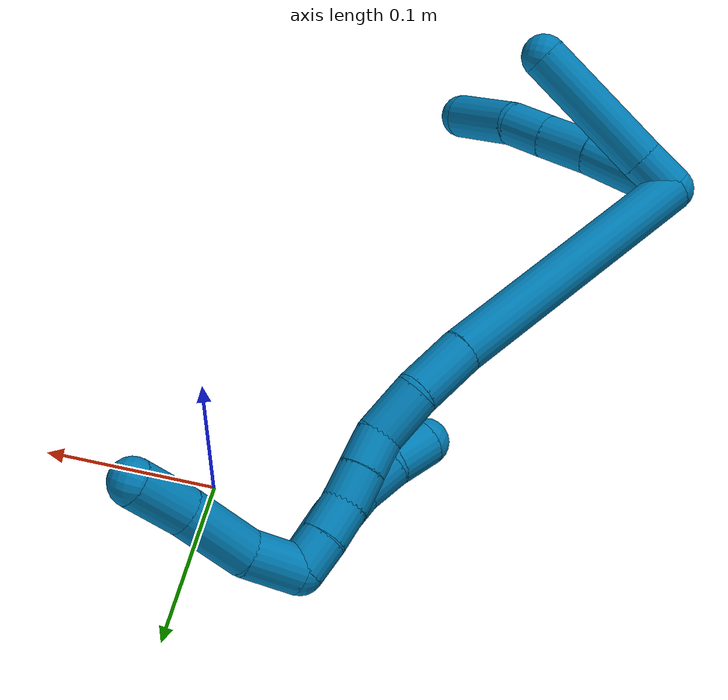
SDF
<sdf version="1.7">
 <world name="default">
  <model name="9">
   <static>0</static>
   <link name="9">
    <collision name="collision-cylinder-e_1_2_8">
     <pose>-0.007198 -0.00766 -0.024235 2.83547 -0.275976 -1.46584</pose>
     <geometry><cylinder><radius>0.0125</radius><length>0.052832</length></cylinder></geometry>
     <surface>
      <friction><ode><mu>1.16</mu><mu2>1.16</mu2><slip1>0</slip1><slip2>0</slip2></ode></friction>
      <contact><ode><kp>1e+06</kp><kd>1</kd><max_vel>0</max_vel><min_depth>0.001</min_depth></ode></contact>
     </surface>
    </collision>
    <visual name="visual-cylinder-e_1_2_8">
     <pose>-0.007198 -0.00766 -0.024235 2.83547 -0.275976 -1.46584</pose>
     <geometry><cylinder><radius>0.0125</radius><length>0.052832</length></cylinder></geometry>
     <material><ambient>0 0.490196 0.709804 1</ambient></material>
    </visual>
    <collision name="collision-cylinder-e_2_8_9">
     <pose>-0.019321 -0.019019 -0.062313 2.88041 -0.331044 -1.80902</pose>
     <geometry><cylinder><radius>0.0125</radius><length>0.030306</length></cylinder></geometry>
     <surface>
      <friction><ode><mu>1.16</mu><mu2>1.16</mu2><slip1>0</slip1><slip2>0</slip2></ode></friction>
      <contact><ode><kp>1e+06</kp><kd>1</kd><max_vel>0</max_vel><min_depth>0.001</min_depth></ode></contact>
     </surface>
    </collision>
    <visual name="visual-cylinder-e_2_8_9">
     <pose>-0.019321 -0.019019 -0.062313 2.88041 -0.331044 -1.80902</pose>
     <geometry><cylinder><radius>0.0125</radius><length>0.030306</length></cylinder></geometry>
     <material><ambient>0 0.490196 0.709804 1</ambient></material>
    </visual>
    <collision name="collision-cylinder-e_3_9_10">
     <pose>-0.028187 -0.025895 -0.087474 2.86806 -0.323504 -1.74028</pose>
     <geometry><cylinder><radius>0.0125</radius><length>0.024793</length></cylinder></geometry>
     <surface>
      <friction><ode><mu>1.16</mu><mu2>1.16</mu2><slip1>0</slip1><slip2>0</slip2></ode></friction>
      <contact><ode><kp>1e+06</kp><kd>1</kd><max_vel>0</max_vel><min_depth>0.001</min_depth></ode></contact>
     </surface>
    </collision>
    <visual name="visual-cylinder-e_3_9_10">
     <pose>-0.028187 -0.025895 -0.087474 2.86806 -0.323504 -1.74028</pose>
     <geometry><cylinder><radius>0.0125</radius><length>0.024793</length></cylinder></geometry>
     <material><ambient>0 0.490196 0.709804 1</ambient></material>
    </visual>
    <collision name="collision-cylinder-e_4_10_6">
     <pose>-0.044173 -0.032962 -0.11559 2.91393 -0.609732 -2.44464</pose>
     <geometry><cylinder><radius>0.0125</radius><length>0.04207</length></cylinder></geometry>
     <surface>
      <friction><ode><mu>1.16</mu><mu2>1.16</mu2><slip1>0</slip1><slip2>0</slip2></ode></friction>
      <contact><ode><kp>1e+06</kp><kd>1</kd><max_vel>0</max_vel><min_depth>0.001</min_depth></ode></contact>
     </surface>
    </collision>
    <visual name="visual-cylinder-e_4_10_6">
     <pose>-0.044173 -0.032962 -0.11559 2.91393 -0.609732 -2.44464</pose>
     <geometry><cylinder><radius>0.0125</radius><length>0.04207</length></cylinder></geometry>
     <material><ambient>0 0.490196 0.709804 1</ambient></material>
    </visual>
    <collision name="collision-cylinder-e_1_2_11">
     <pose>0.003441 -0.004774 -0.009806 2.68851 0.305611 1.17804</pose>
     <geometry><cylinder><radius>0.0125</radius><length>0.022872</length></cylinder></geometry>
     <surface>
      <friction><ode><mu>1.16</mu><mu2>1.16</mu2><slip1>0</slip1><slip2>0</slip2></ode></friction>
      <contact><ode><kp>1e+06</kp><kd>1</kd><max_vel>0</max_vel><min_depth>0.001</min_depth></ode></contact>
     </surface>
    </collision>
    <visual name="visual-cylinder-e_1_2_11">
     <pose>0.003441 -0.004774 -0.009806 2.68851 0.305611 1.17804</pose>
     <geometry><cylinder><radius>0.0125</radius><length>0.022872</length></cylinder></geometry>
     <material><ambient>0 0.490196 0.709804 1</ambient></material>
    </visual>
    <collision name="collision-cylinder-e_2_11_5">
     <pose>0.019858 -0.025595 -0.052189 2.68389 0.343188 1.27927</pose>
     <geometry><cylinder><radius>0.0125</radius><length>0.077128</length></cylinder></geometry>
     <surface>
      <friction><ode><mu>1.16</mu><mu2>1.16</mu2><slip1>0</slip1><slip2>0</slip2></ode></friction>
      <contact><ode><kp>1e+06</kp><kd>1</kd><max_vel>0</max_vel><min_depth>0.001</min_depth></ode></contact>
     </surface>
    </collision>
    <visual name="visual-cylinder-e_2_11_5">
     <pose>0.019858 -0.025595 -0.052189 2.68389 0.343188 1.27927</pose>
     <geometry><cylinder><radius>0.0125</radius><length>0.077128</length></cylinder></geometry>
     <material><ambient>0 0.490196 0.709804 1</ambient></material>
    </visual>
    <collision name="collision-cylinder-e_1_2_12">
     <pose>0.01617 0.066454 -0.038309 -2.09373 0.207766 -0.357043</pose>
     <geometry><cylinder><radius>0.0125</radius><length>0.156783</length></cylinder></geometry>
     <surface>
      <friction><ode><mu>1.16</mu><mu2>1.16</mu2><slip1>0</slip1><slip2>0</slip2></ode></friction>
      <contact><ode><kp>1e+06</kp><kd>1</kd><max_vel>0</max_vel><min_depth>0.001</min_depth></ode></contact>
     </surface>
    </collision>
    <visual name="visual-cylinder-e_1_2_12">
     <pose>0.01617 0.066454 -0.038309 -2.09373 0.207766 -0.357043</pose>
     <geometry><cylinder><radius>0.0125</radius><length>0.156783</length></cylinder></geometry>
     <material><ambient>0 0.490196 0.709804 1</ambient></material>
    </visual>
    <collision name="collision-cylinder-e_2_12_13">
     <pose>0.035435 0.147921 -0.083661 -2.0095 0.184491 -0.289147</pose>
     <geometry><cylinder><radius>0.0125</radius><length>0.033739</length></cylinder></geometry>
     <surface>
      <friction><ode><mu>1.16</mu><mu2>1.16</mu2><slip1>0</slip1><slip2>0</slip2></ode></friction>
      <contact><ode><kp>1e+06</kp><kd>1</kd><max_vel>0</max_vel><min_depth>0.001</min_depth></ode></contact>
     </surface>
    </collision>
    <visual name="visual-cylinder-e_2_12_13">
     <pose>0.035435 0.147921 -0.083661 -2.0095 0.184491 -0.289147</pose>
     <geometry><cylinder><radius>0.0125</radius><length>0.033739</length></cylinder></geometry>
     <material><ambient>0 0.490196 0.709804 1</ambient></material>
    </visual>
    <collision name="collision-cylinder-e_3_13_14">
     <pose>0.037577 0.17637 -0.096471 -1.97613 -0.065024 0.098613</pose>
     <geometry><cylinder><radius>0.0125</radius><length>0.029304</length></cylinder></geometry>
     <surface>
      <friction><ode><mu>1.16</mu><mu2>1.16</mu2><slip1>0</slip1><slip2>0</slip2></ode></friction>
      <contact><ode><kp>1e+06</kp><kd>1</kd><max_vel>0</max_vel><min_depth>0.001</min_depth></ode></contact>
     </surface>
    </collision>
    <visual name="visual-cylinder-e_3_13_14">
     <pose>0.037577 0.17637 -0.096471 -1.97613 -0.065024 0.098613</pose>
     <geometry><cylinder><radius>0.0125</radius><length>0.029304</length></cylinder></geometry>
     <material><ambient>0 0.490196 0.709804 1</ambient></material>
    </visual>
    <collision name="collision-cylinder-e_4_14_15">
     <pose>0.037065 0.199741 -0.10347 -1.69432 0.043864 -0.049644</pose>
     <geometry><cylinder><radius>0.0125</radius><length>0.02004</length></cylinder></geometry>
     <surface>
      <friction><ode><mu>1.16</mu><mu2>1.16</mu2><slip1>0</slip1><slip2>0</slip2></ode></friction>
      <contact><ode><kp>1e+06</kp><kd>1</kd><max_vel>0</max_vel><min_depth>0.001</min_depth></ode></contact>
     </surface>
    </collision>
    <visual name="visual-cylinder-e_4_14_15">
     <pose>0.037065 0.199741 -0.10347 -1.69432 0.043864 -0.049644</pose>
     <geometry><cylinder><radius>0.0125</radius><length>0.02004</length></cylinder></geometry>
     <material><ambient>0 0.490196 0.709804 1</ambient></material>
    </visual>
    <collision name="collision-cylinder-e_5_15_16">
     <pose>0.037551 0.219594 -0.106001 -1.70095 0.004692 -0.005346</pose>
     <geometry><cylinder><radius>0.0125</radius><length>0.020008</length></cylinder></geometry>
     <surface>
      <friction><ode><mu>1.16</mu><mu2>1.16</mu2><slip1>0</slip1><slip2>0</slip2></ode></friction>
      <contact><ode><kp>1e+06</kp><kd>1</kd><max_vel>0</max_vel><min_depth>0.001</min_depth></ode></contact>
     </surface>
    </collision>
    <visual name="visual-cylinder-e_5_15_16">
     <pose>0.037551 0.219594 -0.106001 -1.70095 0.004692 -0.005346</pose>
     <geometry><cylinder><radius>0.0125</radius><length>0.020008</length></cylinder></geometry>
     <material><ambient>0 0.490196 0.709804 1</ambient></material>
    </visual>
    <collision name="collision-cylinder-e_6_16_17">
     <pose>0.038908 0.239269 -0.109354 -1.77834 0.130689 -0.160956</pose>
     <geometry><cylinder><radius>0.0125</radius><length>0.020109</length></cylinder></geometry>
     <surface>
      <friction><ode><mu>1.16</mu><mu2>1.16</mu2><slip1>0</slip1><slip2>0</slip2></ode></friction>
      <contact><ode><kp>1e+06</kp><kd>1</kd><max_vel>0</max_vel><min_depth>0.001</min_depth></ode></contact>
     </surface>
    </collision>
    <visual name="visual-cylinder-e_6_16_17">
     <pose>0.038908 0.239269 -0.109354 -1.77834 0.130689 -0.160956</pose>
     <geometry><cylinder><radius>0.0125</radius><length>0.020109</length></cylinder></geometry>
     <material><ambient>0 0.490196 0.709804 1</ambient></material>
    </visual>
    <collision name="collision-cylinder-e_7_17_1">
     <pose>0.041111 0.258597 -0.114189 -1.85352 0.08924 -0.118793</pose>
     <geometry><cylinder><radius>0.0125</radius><length>0.020017</length></cylinder></geometry>
     <surface>
      <friction><ode><mu>1.16</mu><mu2>1.16</mu2><slip1>0</slip1><slip2>0</slip2></ode></friction>
      <contact><ode><kp>1e+06</kp><kd>1</kd><max_vel>0</max_vel><min_depth>0.001</min_depth></ode></contact>
     </surface>
    </collision>
    <visual name="visual-cylinder-e_7_17_1">
     <pose>0.041111 0.258597 -0.114189 -1.85352 0.08924 -0.118793</pose>
     <geometry><cylinder><radius>0.0125</radius><length>0.020017</length></cylinder></geometry>
     <material><ambient>0 0.490196 0.709804 1</ambient></material>
    </visual>
    <collision name="collision-cylinder-e_1_1_18">
     <pose>0.049888 0.269314 -0.129499 -3.05052 0.559853 -2.82718</pose>
     <geometry><cylinder><radius>0.0125</radius><length>0.029695</length></cylinder></geometry>
     <surface>
      <friction><ode><mu>1.16</mu><mu2>1.16</mu2><slip1>0</slip1><slip2>0</slip2></ode></friction>
      <contact><ode><kp>1e+06</kp><kd>1</kd><max_vel>0</max_vel><min_depth>0.001</min_depth></ode></contact>
     </surface>
    </collision>
    <visual name="visual-cylinder-e_1_1_18">
     <pose>0.049888 0.269314 -0.129499 -3.05052 0.559853 -2.82718</pose>
     <geometry><cylinder><radius>0.0125</radius><length>0.029695</length></cylinder></geometry>
     <material><ambient>0 0.490196 0.709804 1</ambient></material>
    </visual>
    <collision name="collision-cylinder-e_2_18_19">
     <pose>0.069902 0.267423 -0.157009 2.94173 0.670771 2.5814</pose>
     <geometry><cylinder><radius>0.0125</radius><length>0.039026</length></cylinder></geometry>
     <surface>
      <friction><ode><mu>1.16</mu><mu2>1.16</mu2><slip1>0</slip1><slip2>0</slip2></ode></friction>
      <contact><ode><kp>1e+06</kp><kd>1</kd><max_vel>0</max_vel><min_depth>0.001</min_depth></ode></contact>
     </surface>
    </collision>
    <visual name="visual-cylinder-e_2_18_19">
     <pose>0.069902 0.267423 -0.157009 2.94173 0.670771 2.5814</pose>
     <geometry><cylinder><radius>0.0125</radius><length>0.039026</length></cylinder></geometry>
     <material><ambient>0 0.490196 0.709804 1</ambient></material>
    </visual>
    <collision name="collision-cylinder-e_3_19_4">
     <pose>0.0928 0.263442 -0.183291 3.05804 0.759525 2.9329</pose>
     <geometry><cylinder><radius>0.0125</radius><length>0.031278</length></cylinder></geometry>
     <surface>
      <friction><ode><mu>1.16</mu><mu2>1.16</mu2><slip1>0</slip1><slip2>0</slip2></ode></friction>
      <contact><ode><kp>1e+06</kp><kd>1</kd><max_vel>0</max_vel><min_depth>0.001</min_depth></ode></contact>
     </surface>
    </collision>
    <visual name="visual-cylinder-e_3_19_4">
     <pose>0.0928 0.263442 -0.183291 3.05804 0.759525 2.9329</pose>
     <geometry><cylinder><radius>0.0125</radius><length>0.031278</length></cylinder></geometry>
     <material><ambient>0 0.490196 0.709804 1</ambient></material>
    </visual>
    <collision name="collision-cylinder-e_1_1_20">
     <pose>0.038826 0.253182 -0.113708 1.35652 -0.204177 -0.164724</pose>
     <geometry><cylinder><radius>0.0125</radius><length>0.031328</length></cylinder></geometry>
     <surface>
      <friction><ode><mu>1.16</mu><mu2>1.16</mu2><slip1>0</slip1><slip2>0</slip2></ode></friction>
      <contact><ode><kp>1e+06</kp><kd>1</kd><max_vel>0</max_vel><min_depth>0.001</min_depth></ode></contact>
     </surface>
    </collision>
    <visual name="visual-cylinder-e_1_1_20">
     <pose>0.038826 0.253182 -0.113708 1.35652 -0.204177 -0.164724</pose>
     <geometry><cylinder><radius>0.0125</radius><length>0.031328</length></cylinder></geometry>
     <material><ambient>0 0.490196 0.709804 1</ambient></material>
    </visual>
    <collision name="collision-cylinder-e_2_20_21">
     <pose>0.032191 0.228408 -0.107625 1.29002 -0.327437 -0.247308</pose>
     <geometry><cylinder><radius>0.0125</radius><length>0.021514</length></cylinder></geometry>
     <surface>
      <friction><ode><mu>1.16</mu><mu2>1.16</mu2><slip1>0</slip1><slip2>0</slip2></ode></friction>
      <contact><ode><kp>1e+06</kp><kd>1</kd><max_vel>0</max_vel><min_depth>0.001</min_depth></ode></contact>
     </surface>
    </collision>
    <visual name="visual-cylinder-e_2_20_21">
     <pose>0.032191 0.228408 -0.107625 1.29002 -0.327437 -0.247308</pose>
     <geometry><cylinder><radius>0.0125</radius><length>0.021514</length></cylinder></geometry>
     <material><ambient>0 0.490196 0.709804 1</ambient></material>
    </visual>
    <collision name="collision-cylinder-e_3_21_22">
     <pose>0.026774 0.208628 -0.099149 1.05594 -0.16881 -0.098604</pose>
     <geometry><cylinder><radius>0.0125</radius><length>0.023294</length></cylinder></geometry>
     <surface>
      <friction><ode><mu>1.16</mu><mu2>1.16</mu2><slip1>0</slip1><slip2>0</slip2></ode></friction>
      <contact><ode><kp>1e+06</kp><kd>1</kd><max_vel>0</max_vel><min_depth>0.001</min_depth></ode></contact>
     </surface>
    </collision>
    <visual name="visual-cylinder-e_3_21_22">
     <pose>0.026774 0.208628 -0.099149 1.05594 -0.16881 -0.098604</pose>
     <geometry><cylinder><radius>0.0125</radius><length>0.023294</length></cylinder></geometry>
     <material><ambient>0 0.490196 0.709804 1</ambient></material>
    </visual>
    <collision name="collision-cylinder-e_4_22_3">
     <pose>0.019864 0.189455 -0.087702 1.00787 -0.428148 -0.238627</pose>
     <geometry><cylinder><radius>0.0125</radius><length>0.023865</length></cylinder></geometry>
     <surface>
      <friction><ode><mu>1.16</mu><mu2>1.16</mu2><slip1>0</slip1><slip2>0</slip2></ode></friction>
      <contact><ode><kp>1e+06</kp><kd>1</kd><max_vel>0</max_vel><min_depth>0.001</min_depth></ode></contact>
     </surface>
    </collision>
    <visual name="visual-cylinder-e_4_22_3">
     <pose>0.019864 0.189455 -0.087702 1.00787 -0.428148 -0.238627</pose>
     <geometry><cylinder><radius>0.0125</radius><length>0.023865</length></cylinder></geometry>
     <material><ambient>0 0.490196 0.709804 1</ambient></material>
    </visual>
    <collision name="collision-sphere-3">
     <pose>0.014909 0.180274 -0.081909 0 -0 0</pose>
     <geometry><sphere><radius>0.0125</radius></sphere></geometry>
     <surface>
      <friction><ode><mu>1.16</mu><mu2>1.16</mu2><slip1>0</slip1><slip2>0</slip2></ode></friction>
      <contact><ode><kp>1e+06</kp><kd>1</kd><max_vel>0</max_vel><min_depth>0.001</min_depth></ode></contact>
     </surface>
    </collision>
    <visual name="visual-sphere-3">
     <pose>0.014909 0.180274 -0.081909 0 -0 0</pose>
     <geometry><sphere><radius>0.0125</radius></sphere></geometry>
     <material><ambient>0 0.490196 0.709804 1</ambient></material>
    </visual>
    <collision name="collision-sphere-22">
     <pose>0.024818 0.198635 -0.093495 0 -0 0</pose>
     <geometry><sphere><radius>0.0125</radius></sphere></geometry>
     <surface>
      <friction><ode><mu>1.16</mu><mu2>1.16</mu2><slip1>0</slip1><slip2>0</slip2></ode></friction>
      <contact><ode><kp>1e+06</kp><kd>1</kd><max_vel>0</max_vel><min_depth>0.001</min_depth></ode></contact>
     </surface>
    </collision>
    <visual name="visual-sphere-22">
     <pose>0.024818 0.198635 -0.093495 0 -0 0</pose>
     <geometry><sphere><radius>0.0125</radius></sphere></geometry>
     <material><ambient>0 0.490196 0.709804 1</ambient></material>
    </visual>
    <collision name="collision-sphere-21">
     <pose>0.028731 0.218621 -0.104802 0 -0 0</pose>
     <geometry><sphere><radius>0.0125</radius></sphere></geometry>
     <surface>
      <friction><ode><mu>1.16</mu><mu2>1.16</mu2><slip1>0</slip1><slip2>0</slip2></ode></friction>
      <contact><ode><kp>1e+06</kp><kd>1</kd><max_vel>0</max_vel><min_depth>0.001</min_depth></ode></contact>
     </surface>
    </collision>
    <visual name="visual-sphere-21">
     <pose>0.028731 0.218621 -0.104802 0 -0 0</pose>
     <geometry><sphere><radius>0.0125</radius></sphere></geometry>
     <material><ambient>0 0.490196 0.709804 1</ambient></material>
    </visual>
    <collision name="collision-sphere-20">
     <pose>0.03565 0.238194 -0.110447 0 -0 0</pose>
     <geometry><sphere><radius>0.0125</radius></sphere></geometry>
     <surface>
      <friction><ode><mu>1.16</mu><mu2>1.16</mu2><slip1>0</slip1><slip2>0</slip2></ode></friction>
      <contact><ode><kp>1e+06</kp><kd>1</kd><max_vel>0</max_vel><min_depth>0.001</min_depth></ode></contact>
     </surface>
    </collision>
    <visual name="visual-sphere-20">
     <pose>0.03565 0.238194 -0.110447 0 -0 0</pose>
     <geometry><sphere><radius>0.0125</radius></sphere></geometry>
     <material><ambient>0 0.490196 0.709804 1</ambient></material>
    </visual>
    <collision name="collision-sphere-4">
     <pose>0.103568 0.262496 -0.194593 0 -0 0</pose>
     <geometry><sphere><radius>0.0125</radius></sphere></geometry>
     <surface>
      <friction><ode><mu>1.16</mu><mu2>1.16</mu2><slip1>0</slip1><slip2>0</slip2></ode></friction>
      <contact><ode><kp>1e+06</kp><kd>1</kd><max_vel>0</max_vel><min_depth>0.001</min_depth></ode></contact>
     </surface>
    </collision>
    <visual name="visual-sphere-4">
     <pose>0.103568 0.262496 -0.194593 0 -0 0</pose>
     <geometry><sphere><radius>0.0125</radius></sphere></geometry>
     <material><ambient>0 0.490196 0.709804 1</ambient></material>
    </visual>
    <collision name="collision-sphere-11">
     <pose>0.006882 -0.009548 -0.019611 0 -0 0</pose>
     <geometry><sphere><radius>0.0125</radius></sphere></geometry>
     <surface>
      <friction><ode><mu>1.16</mu><mu2>1.16</mu2><slip1>0</slip1><slip2>0</slip2></ode></friction>
      <contact><ode><kp>1e+06</kp><kd>1</kd><max_vel>0</max_vel><min_depth>0.001</min_depth></ode></contact>
     </surface>
    </collision>
    <visual name="visual-sphere-11">
     <pose>0.006882 -0.009548 -0.019611 0 -0 0</pose>
     <geometry><sphere><radius>0.0125</radius></sphere></geometry>
     <material><ambient>0 0.490196 0.709804 1</ambient></material>
    </visual>
    <collision name="collision-sphere-6">
     <pose>-0.056219 -0.036854 -0.132389 0 -0 0</pose>
     <geometry><sphere><radius>0.0125</radius></sphere></geometry>
     <surface>
      <friction><ode><mu>1.16</mu><mu2>1.16</mu2><slip1>0</slip1><slip2>0</slip2></ode></friction>
      <contact><ode><kp>1e+06</kp><kd>1</kd><max_vel>0</max_vel><min_depth>0.001</min_depth></ode></contact>
     </surface>
    </collision>
    <visual name="visual-sphere-6">
     <pose>-0.056219 -0.036854 -0.132389 0 -0 0</pose>
     <geometry><sphere><radius>0.0125</radius></sphere></geometry>
     <material><ambient>0 0.490196 0.709804 1</ambient></material>
    </visual>
    <collision name="collision-sphere-10">
     <pose>-0.032128 -0.02907 -0.09879 0 -0 0</pose>
     <geometry><sphere><radius>0.0125</radius></sphere></geometry>
     <surface>
      <friction><ode><mu>1.16</mu><mu2>1.16</mu2><slip1>0</slip1><slip2>0</slip2></ode></friction>
      <contact><ode><kp>1e+06</kp><kd>1</kd><max_vel>0</max_vel><min_depth>0.001</min_depth></ode></contact>
     </surface>
    </collision>
    <visual name="visual-sphere-10">
     <pose>-0.032128 -0.02907 -0.09879 0 -0 0</pose>
     <geometry><sphere><radius>0.0125</radius></sphere></geometry>
     <material><ambient>0 0.490196 0.709804 1</ambient></material>
    </visual>
    <collision name="collision-sphere-9">
     <pose>-0.024246 -0.02272 -0.076158 0 -0 0</pose>
     <geometry><sphere><radius>0.0125</radius></sphere></geometry>
     <surface>
      <friction><ode><mu>1.16</mu><mu2>1.16</mu2><slip1>0</slip1><slip2>0</slip2></ode></friction>
      <contact><ode><kp>1e+06</kp><kd>1</kd><max_vel>0</max_vel><min_depth>0.001</min_depth></ode></contact>
     </surface>
    </collision>
    <visual name="visual-sphere-9">
     <pose>-0.024246 -0.02272 -0.076158 0 -0 0</pose>
     <geometry><sphere><radius>0.0125</radius></sphere></geometry>
     <material><ambient>0 0.490196 0.709804 1</ambient></material>
    </visual>
    <collision name="collision-sphere-2">
     <geometry><sphere><radius>0.0125</radius></sphere></geometry>
     <surface>
      <friction><ode><mu>1.16</mu><mu2>1.16</mu2><slip1>0</slip1><slip2>0</slip2></ode></friction>
      <contact><ode><kp>1e+06</kp><kd>1</kd><max_vel>0</max_vel><min_depth>0.001</min_depth></ode></contact>
     </surface>
    </collision>
    <visual name="visual-sphere-2">
     <geometry><sphere><radius>0.0125</radius></sphere></geometry>
     <material><ambient>0 0.490196 0.709804 1</ambient></material>
    </visual>
    <collision name="collision-sphere-19">
     <pose>0.082031 0.264389 -0.17199 0 -0 0</pose>
     <geometry><sphere><radius>0.0125</radius></sphere></geometry>
     <surface>
      <friction><ode><mu>1.16</mu><mu2>1.16</mu2><slip1>0</slip1><slip2>0</slip2></ode></friction>
      <contact><ode><kp>1e+06</kp><kd>1</kd><max_vel>0</max_vel><min_depth>0.001</min_depth></ode></contact>
     </surface>
    </collision>
    <visual name="visual-sphere-19">
     <pose>0.082031 0.264389 -0.17199 0 -0 0</pose>
     <geometry><sphere><radius>0.0125</radius></sphere></geometry>
     <material><ambient>0 0.490196 0.709804 1</ambient></material>
    </visual>
    <collision name="collision-sphere-8">
     <pose>-0.014396 -0.015319 -0.048469 0 -0 0</pose>
     <geometry><sphere><radius>0.0125</radius></sphere></geometry>
     <surface>
      <friction><ode><mu>1.16</mu><mu2>1.16</mu2><slip1>0</slip1><slip2>0</slip2></ode></friction>
      <contact><ode><kp>1e+06</kp><kd>1</kd><max_vel>0</max_vel><min_depth>0.001</min_depth></ode></contact>
     </surface>
    </collision>
    <visual name="visual-sphere-8">
     <pose>-0.014396 -0.015319 -0.048469 0 -0 0</pose>
     <geometry><sphere><radius>0.0125</radius></sphere></geometry>
     <material><ambient>0 0.490196 0.709804 1</ambient></material>
    </visual>
    <collision name="collision-sphere-5">
     <pose>0.032834 -0.041643 -0.084766 0 -0 0</pose>
     <geometry><sphere><radius>0.0125</radius></sphere></geometry>
     <surface>
      <friction><ode><mu>1.16</mu><mu2>1.16</mu2><slip1>0</slip1><slip2>0</slip2></ode></friction>
      <contact><ode><kp>1e+06</kp><kd>1</kd><max_vel>0</max_vel><min_depth>0.001</min_depth></ode></contact>
     </surface>
    </collision>
    <visual name="visual-sphere-5">
     <pose>0.032834 -0.041643 -0.084766 0 -0 0</pose>
     <geometry><sphere><radius>0.0125</radius></sphere></geometry>
     <material><ambient>0 0.490196 0.709804 1</ambient></material>
    </visual>
    <collision name="collision-sphere-12">
     <pose>0.03234 0.132909 -0.076617 0 -0 0</pose>
     <geometry><sphere><radius>0.0125</radius></sphere></geometry>
     <surface>
      <friction><ode><mu>1.16</mu><mu2>1.16</mu2><slip1>0</slip1><slip2>0</slip2></ode></friction>
      <contact><ode><kp>1e+06</kp><kd>1</kd><max_vel>0</max_vel><min_depth>0.001</min_depth></ode></contact>
     </surface>
    </collision>
    <visual name="visual-sphere-12">
     <pose>0.03234 0.132909 -0.076617 0 -0 0</pose>
     <geometry><sphere><radius>0.0125</radius></sphere></geometry>
     <material><ambient>0 0.490196 0.709804 1</ambient></material>
    </visual>
    <collision name="collision-sphere-13">
     <pose>0.038529 0.162934 -0.090705 0 -0 0</pose>
     <geometry><sphere><radius>0.0125</radius></sphere></geometry>
     <surface>
      <friction><ode><mu>1.16</mu><mu2>1.16</mu2><slip1>0</slip1><slip2>0</slip2></ode></friction>
      <contact><ode><kp>1e+06</kp><kd>1</kd><max_vel>0</max_vel><min_depth>0.001</min_depth></ode></contact>
     </surface>
    </collision>
    <visual name="visual-sphere-13">
     <pose>0.038529 0.162934 -0.090705 0 -0 0</pose>
     <geometry><sphere><radius>0.0125</radius></sphere></geometry>
     <material><ambient>0 0.490196 0.709804 1</ambient></material>
    </visual>
    <collision name="collision-sphere-14">
     <pose>0.036625 0.189807 -0.102236 0 -0 0</pose>
     <geometry><sphere><radius>0.0125</radius></sphere></geometry>
     <surface>
      <friction><ode><mu>1.16</mu><mu2>1.16</mu2><slip1>0</slip1><slip2>0</slip2></ode></friction>
      <contact><ode><kp>1e+06</kp><kd>1</kd><max_vel>0</max_vel><min_depth>0.001</min_depth></ode></contact>
     </surface>
    </collision>
    <visual name="visual-sphere-14">
     <pose>0.036625 0.189807 -0.102236 0 -0 0</pose>
     <geometry><sphere><radius>0.0125</radius></sphere></geometry>
     <material><ambient>0 0.490196 0.709804 1</ambient></material>
    </visual>
    <collision name="collision-sphere-15">
     <pose>0.037504 0.209675 -0.104703 0 -0 0</pose>
     <geometry><sphere><radius>0.0125</radius></sphere></geometry>
     <surface>
      <friction><ode><mu>1.16</mu><mu2>1.16</mu2><slip1>0</slip1><slip2>0</slip2></ode></friction>
      <contact><ode><kp>1e+06</kp><kd>1</kd><max_vel>0</max_vel><min_depth>0.001</min_depth></ode></contact>
     </surface>
    </collision>
    <visual name="visual-sphere-15">
     <pose>0.037504 0.209675 -0.104703 0 -0 0</pose>
     <geometry><sphere><radius>0.0125</radius></sphere></geometry>
     <material><ambient>0 0.490196 0.709804 1</ambient></material>
    </visual>
    <collision name="collision-sphere-16">
     <pose>0.037598 0.229514 -0.1073 0 -0 0</pose>
     <geometry><sphere><radius>0.0125</radius></sphere></geometry>
     <surface>
      <friction><ode><mu>1.16</mu><mu2>1.16</mu2><slip1>0</slip1><slip2>0</slip2></ode></friction>
      <contact><ode><kp>1e+06</kp><kd>1</kd><max_vel>0</max_vel><min_depth>0.001</min_depth></ode></contact>
     </surface>
    </collision>
    <visual name="visual-sphere-16">
     <pose>0.037598 0.229514 -0.1073 0 -0 0</pose>
     <geometry><sphere><radius>0.0125</radius></sphere></geometry>
     <material><ambient>0 0.490196 0.709804 1</ambient></material>
    </visual>
    <collision name="collision-sphere-17">
     <pose>0.040219 0.249024 -0.111408 0 -0 0</pose>
     <geometry><sphere><radius>0.0125</radius></sphere></geometry>
     <surface>
      <friction><ode><mu>1.16</mu><mu2>1.16</mu2><slip1>0</slip1><slip2>0</slip2></ode></friction>
      <contact><ode><kp>1e+06</kp><kd>1</kd><max_vel>0</max_vel><min_depth>0.001</min_depth></ode></contact>
     </surface>
    </collision>
    <visual name="visual-sphere-17">
     <pose>0.040219 0.249024 -0.111408 0 -0 0</pose>
     <geometry><sphere><radius>0.0125</radius></sphere></geometry>
     <material><ambient>0 0.490196 0.709804 1</ambient></material>
    </visual>
    <collision name="collision-sphere-1">
     <pose>0.042002 0.268169 -0.11697 0 -0 0</pose>
     <geometry><sphere><radius>0.0125</radius></sphere></geometry>
     <surface>
      <friction><ode><mu>1.16</mu><mu2>1.16</mu2><slip1>0</slip1><slip2>0</slip2></ode></friction>
      <contact><ode><kp>1e+06</kp><kd>1</kd><max_vel>0</max_vel><min_depth>0.001</min_depth></ode></contact>
     </surface>
    </collision>
    <visual name="visual-sphere-1">
     <pose>0.042002 0.268169 -0.11697 0 -0 0</pose>
     <geometry><sphere><radius>0.0125</radius></sphere></geometry>
     <material><ambient>0 0.490196 0.709804 1</ambient></material>
    </visual>
    <collision name="collision-sphere-18">
     <pose>0.057773 0.270458 -0.142028 0 -0 0</pose>
     <geometry><sphere><radius>0.0125</radius></sphere></geometry>
     <surface>
      <friction><ode><mu>1.16</mu><mu2>1.16</mu2><slip1>0</slip1><slip2>0</slip2></ode></friction>
      <contact><ode><kp>1e+06</kp><kd>1</kd><max_vel>0</max_vel><min_depth>0.001</min_depth></ode></contact>
     </surface>
    </collision>
    <visual name="visual-sphere-18">
     <pose>0.057773 0.270458 -0.142028 0 -0 0</pose>
     <geometry><sphere><radius>0.0125</radius></sphere></geometry>
     <material><ambient>0 0.490196 0.709804 1</ambient></material>
    </visual>
    <inertial>
     <pose>0.021516 0.11036 -0.081028 0 -0 0</pose>
     <mass>0.75</mass>
     <inertia>
      <ixx>0.000227</ixx>
      <ixy>0</ixy>
      <ixz>0</ixz>
      <iyy>-0.000207</iyy>
      <iyz>0</iyz>
      <izz>-0.000364</izz>
     </inertia>
    </inertial>
   </link>
   <pose>-0.218522 -0.168246 0.129757 -1.60957 -1.25605 1.5091</pose>
  </model>
 </world>
</sdf>
